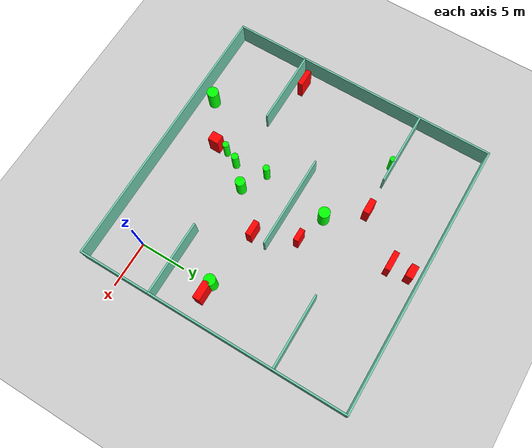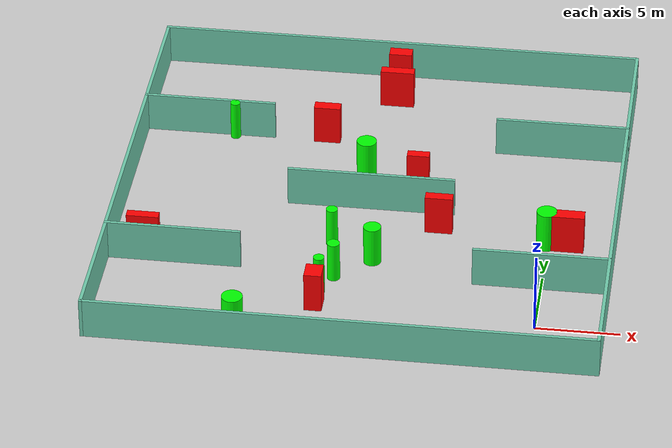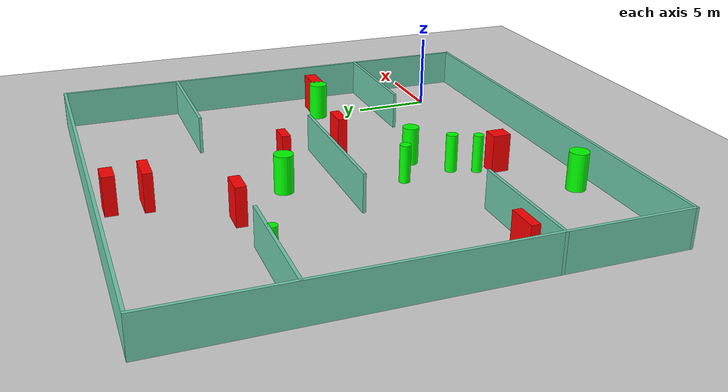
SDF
<sdf version="1.7">
 <world name="default">
  <light name="sun" type="directional">
   <pose>0 0 10 0 -0 0</pose>
   <diffuse>0.8 0.8 0.8 1</diffuse>
   <specular>0.2 0.2 0.2 1</specular>
   <attenuation>
    <range>1000</range>
    <constant>0.9</constant>
    <linear>0.01</linear>
    <quadratic>0.001</quadratic>
   </attenuation>
   <direction>-0.5 0.1 -0.9</direction>
   <spot><inner_angle>0</inner_angle><outer_angle>0</outer_angle><falloff>0</falloff></spot>
  </light>
  <model name="ground_plane">
   <static>1</static>
   <link name="link">
    <collision name="collision">
     <geometry><plane><normal>0 0 1</normal><size>100 100</size></plane></geometry>
     <surface>
      <contact><collide_bitmask>65535</collide_bitmask></contact>
      <friction><ode><mu>100</mu><mu2>50</mu2></ode></friction>
     </surface>
    </collision>
    <visual name="visual">
     <cast_shadows>0</cast_shadows>
     <geometry><plane><normal>0 0 1</normal><size>100 100</size></plane></geometry>
     <material>
      <script><uri>file://media/materials/scripts/gazebo.material</uri><name>Gazebo/Grey</name></script>
     </material>
    </visual>
   </link>
  </model>
  <gravity>0 0 -9.8</gravity>
  <magnetic_field>6e-06 2.3e-05 -4.2e-05</magnetic_field>
  <atmosphere type="adiabatic"/>
  <physics type="ode">
   <max_step_size>0.001</max_step_size>
   <real_time_factor>1</real_time_factor>
   <real_time_update_rate>1000</real_time_update_rate>
  </physics>
  <scene><ambient>0.4 0.4 0.4 1</ambient><background>0.7 0.7 0.7 1</background><shadows>1</shadows></scene>
  <spherical_coordinates>
   <surface_model>EARTH_WGS84</surface_model>
   <latitude_deg>0</latitude_deg>
   <longitude_deg>0</longitude_deg>
   <elevation>0</elevation>
   <heading_deg>0</heading_deg>
  </spherical_coordinates>
  <model name="my_base_walls">
   <link name="Wall_10">
    <collision name="Wall_10_Collision">
     <geometry><box><size>8.2 0.2 2.5</size></box></geometry>
     <pose>0 0 1.25 0 -0 0</pose>
    </collision>
    <visual name="Wall_10_Visual">
     <pose>0 0 1.25 0 -0 0</pose>
     <geometry><box><size>8.2 0.2 2.5</size></box></geometry>
     <material>
      <script><uri>file://media/materials/scripts/gazebo.material</uri><name>Gazebo/Grey</name></script>
      <ambient>0.435294 0.796078 0.67451 1</ambient>
     </material>
     <meta><layer>0</layer></meta>
    </visual>
    <pose>-11 -7 0 0 -0 0</pose>
   </link>
   <link name="Wall_12">
    <collision name="Wall_12_Collision">
     <geometry><box><size>8.2 0.2 2.5</size></box></geometry>
     <pose>0 0 1.25 0 -0 0</pose>
    </collision>
    <visual name="Wall_12_Visual">
     <pose>0 0 1.25 0 -0 0</pose>
     <geometry><box><size>8.2 0.2 2.5</size></box></geometry>
     <material>
      <script><uri>file://media/materials/scripts/gazebo.material</uri><name>Gazebo/Grey</name></script>
      <ambient>0.435294 0.796078 0.67451 1</ambient>
     </material>
     <meta><layer>0</layer></meta>
    </visual>
    <pose>-11 7 0 0 -0 0</pose>
   </link>
   <link name="Wall_14">
    <collision name="Wall_14_Collision">
     <geometry><box><size>8.2 0.2 2.5</size></box></geometry>
     <pose>0 0 1.25 0 -0 0</pose>
    </collision>
    <visual name="Wall_14_Visual">
     <pose>0 0 1.25 0 -0 0</pose>
     <geometry><box><size>8.2 0.2 2.5</size></box></geometry>
     <material>
      <script><uri>file://media/materials/scripts/gazebo.material</uri><name>Gazebo/Grey</name></script>
      <ambient>0.435294 0.796078 0.67451 1</ambient>
     </material>
     <meta><layer>0</layer></meta>
    </visual>
    <pose>11 7 0 0 -0 3.14159</pose>
   </link>
   <link name="Wall_16">
    <collision name="Wall_16_Collision">
     <geometry><box><size>10.2 0.2 2.5</size></box></geometry>
     <pose>0 0 1.25 0 -0 0</pose>
    </collision>
    <visual name="Wall_16_Visual">
     <pose>0 0 1.25 0 -0 0</pose>
     <geometry><box><size>10.2 0.2 2.5</size></box></geometry>
     <material>
      <script><uri>file://media/materials/scripts/gazebo.material</uri><name>Gazebo/Grey</name></script>
      <ambient>0.435294 0.796078 0.67451 1</ambient>
     </material>
     <meta><layer>0</layer></meta>
    </visual>
    <pose>0 0 0 0 -0 3.14159</pose>
   </link>
   <link name="Wall_2">
    <collision name="Wall_2_Collision">
     <geometry><box><size>30.2 0.2 2.5</size></box></geometry>
     <pose>0 0 1.25 0 -0 0</pose>
    </collision>
    <visual name="Wall_2_Visual">
     <pose>0 0 1.25 0 -0 0</pose>
     <geometry><box><size>30.2 0.2 2.5</size></box></geometry>
     <material>
      <script><uri>file://media/materials/scripts/gazebo.material</uri><name>Gazebo/Grey</name></script>
      <ambient>0.435294 0.796078 0.67451 1</ambient>
     </material>
     <meta><layer>0</layer></meta>
    </visual>
    <pose>0 -15 0 0 -0 3.14159</pose>
   </link>
   <link name="Wall_3">
    <collision name="Wall_3_Collision">
     <geometry><box><size>30.2 0.2 2.5</size></box></geometry>
     <pose>0 0 1.25 0 -0 0</pose>
    </collision>
    <visual name="Wall_3_Visual">
     <pose>0 0 1.25 0 -0 0</pose>
     <geometry><box><size>30.2 0.2 2.5</size></box></geometry>
     <material>
      <script><uri>file://media/materials/scripts/gazebo.material</uri><name>Gazebo/Grey</name></script>
      <ambient>0.435294 0.796078 0.67451 1</ambient>
     </material>
     <meta><layer>0</layer></meta>
    </visual>
    <pose>-15 0 0 0 -0 1.5708</pose>
   </link>
   <link name="Wall_4">
    <collision name="Wall_4_Collision">
     <geometry><box><size>30.2 0.2 2.5</size></box></geometry>
     <pose>0 0 1.25 0 -0 0</pose>
    </collision>
    <visual name="Wall_4_Visual">
     <pose>0 0 1.25 0 -0 0</pose>
     <geometry><box><size>30.2 0.2 2.5</size></box></geometry>
     <material>
      <script><uri>file://media/materials/scripts/gazebo.material</uri><name>Gazebo/Grey</name></script>
      <ambient>0.435294 0.796078 0.67451 1</ambient>
     </material>
     <meta><layer>0</layer></meta>
    </visual>
    <pose>0 15 0 0 -0 0</pose>
   </link>
   <link name="Wall_6">
    <collision name="Wall_6_Collision">
     <geometry><box><size>30.2 0.2 2.5</size></box></geometry>
     <pose>0 0 1.25 0 -0 0</pose>
    </collision>
    <visual name="Wall_6_Visual">
     <pose>0 0 1.25 0 -0 0</pose>
     <geometry><box><size>30.2 0.2 2.5</size></box></geometry>
     <material>
      <script><uri>file://media/materials/scripts/gazebo.material</uri><name>Gazebo/Grey</name></script>
      <ambient>0.435294 0.796078 0.67451 1</ambient>
     </material>
     <meta><layer>0</layer></meta>
    </visual>
    <pose>15 0 0 0 -0 1.5708</pose>
   </link>
   <link name="Wall_8">
    <collision name="Wall_8_Collision">
     <geometry><box><size>8.2 0.2 2.5</size></box></geometry>
     <pose>0 0 1.25 0 -0 0</pose>
    </collision>
    <visual name="Wall_8_Visual">
     <pose>0 0 1.25 0 -0 0</pose>
     <geometry><box><size>8.2 0.2 2.5</size></box></geometry>
     <material>
      <script><uri>file://media/materials/scripts/gazebo.material</uri><name>Gazebo/Grey</name></script>
      <ambient>0.435294 0.796078 0.67451 1</ambient>
     </material>
     <meta><layer>0</layer></meta>
    </visual>
    <pose>11 -7 0 0 -0 3.14159</pose>
   </link>
   <static>1</static>
   <pose>-11 11 0 0 -0 0</pose>
  </model>
  <model name="cylinder1">
   <static>1</static>
   <link name="link">
    <inertial>
     <mass>1</mass>
     <inertia><ixx>0.5</ixx><ixy>0</ixy><ixz>0</ixz><iyy>0.5</iyy><iyz>0</iyz><izz>1</izz></inertia>
    </inertial>
    <collision name="collision">
     <geometry><cylinder><radius>0.38292145553963747</radius><length>2.5</length></cylinder></geometry>
    </collision>
    <visual name="visual">
     <geometry><cylinder><radius>0.38292145553963747</radius><length>2.5</length></cylinder></geometry>
     <material>
      <ambient>0 1 0 1</ambient>
      <diffuse>0 1 0 1</diffuse>
      <specular>0.1 0.1 0.1 1</specular>
      <emissive>0 0 0 0</emissive>
     </material>
    </visual>
   </link>
   <pose>-12.286246799514927 3.5481243252632897 1.25 0 0 0</pose>
  </model>
  <model name="cylinder2">
   <static>1</static>
   <link name="link">
    <inertial>
     <mass>1</mass>
     <inertia><ixx>0.5</ixx><ixy>0</ixy><ixz>0</ixz><iyy>0.5</iyy><iyz>0</iyz><izz>1</izz></inertia>
    </inertial>
    <collision name="collision">
     <geometry><cylinder><radius>0.6261561258080159</radius><length>2.5</length></cylinder></geometry>
    </collision>
    <visual name="visual">
     <geometry><cylinder><radius>0.6261561258080159</radius><length>2.5</length></cylinder></geometry>
     <material>
      <ambient>0 1 0 1</ambient>
      <diffuse>0 1 0 1</diffuse>
      <specular>0.1 0.1 0.1 1</specular>
      <emissive>0 0 0 0</emissive>
     </material>
    </visual>
   </link>
   <pose>-17.384082349851464 -2.474583022194953 1.25 0 0 0</pose>
  </model>
  <model name="cylinder3">
   <static>1</static>
   <link name="link">
    <inertial>
     <mass>1</mass>
     <inertia><ixx>0.5</ixx><ixy>0</ixy><ixz>0</ixz><iyy>0.5</iyy><iyz>0</iyz><izz>1</izz></inertia>
    </inertial>
    <collision name="collision">
     <geometry><cylinder><radius>0.3074034707730974</radius><length>2.5</length></cylinder></geometry>
    </collision>
    <visual name="visual">
     <geometry><cylinder><radius>0.3074034707730974</radius><length>2.5</length></cylinder></geometry>
     <material>
      <ambient>0 1 0 1</ambient>
      <diffuse>0 1 0 1</diffuse>
      <specular>0.1 0.1 0.1 1</specular>
      <emissive>0 0 0 0</emissive>
     </material>
    </visual>
   </link>
   <pose>-20.380522686043893 17.754830802002093 1.25 0 0 0</pose>
  </model>
  <model name="cylinder4">
   <static>1</static>
   <link name="link">
    <inertial>
     <mass>1</mass>
     <inertia><ixx>0.5</ixx><ixy>0</ixy><ixz>0</ixz><iyy>0.5</iyy><iyz>0</iyz><izz>1</izz></inertia>
    </inertial>
    <collision name="collision">
     <geometry><cylinder><radius>0.6160568747437674</radius><length>2.5</length></cylinder></geometry>
    </collision>
    <visual name="visual">
     <geometry><cylinder><radius>0.6160568747437674</radius><length>2.5</length></cylinder></geometry>
     <material>
      <ambient>0 1 0 1</ambient>
      <diffuse>0 1 0 1</diffuse>
      <specular>0.1 0.1 0.1 1</specular>
      <emissive>0 0 0 0</emissive>
     </material>
    </visual>
   </link>
   <pose>-0.09640906676541405 8.398674084447505 1.25 0 0 0</pose>
  </model>
  <model name="cylinder5">
   <static>1</static>
   <link name="link">
    <inertial>
     <mass>1</mass>
     <inertia><ixx>0.5</ixx><ixy>0</ixy><ixz>0</ixz><iyy>0.5</iyy><iyz>0</iyz><izz>1</izz></inertia>
    </inertial>
    <collision name="collision">
     <geometry><cylinder><radius>0.35669800834303333</radius><length>2.5</length></cylinder></geometry>
    </collision>
    <visual name="visual">
     <geometry><cylinder><radius>0.35669800834303333</radius><length>2.5</length></cylinder></geometry>
     <material>
      <ambient>0 1 0 1</ambient>
      <diffuse>0 1 0 1</diffuse>
      <specular>0.1 0.1 0.1 1</specular>
      <emissive>0 0 0 0</emissive>
     </material>
    </visual>
   </link>
   <pose>-12.853365374820548 7.0251959292389365 1.25 0 0 0</pose>
  </model>
  <model name="cylinder6">
   <static>1</static>
   <link name="link">
    <inertial>
     <mass>1</mass>
     <inertia><ixx>0.5</ixx><ixy>0</ixy><ixz>0</ixz><iyy>0.5</iyy><iyz>0</iyz><izz>1</izz></inertia>
    </inertial>
    <collision name="collision">
     <geometry><cylinder><radius>0.3326544364534501</radius><length>2.5</length></cylinder></geometry>
    </collision>
    <visual name="visual">
     <geometry><cylinder><radius>0.3326544364534501</radius><length>2.5</length></cylinder></geometry>
     <material>
      <ambient>0 1 0 1</ambient>
      <diffuse>0 1 0 1</diffuse>
      <specular>0.1 0.1 0.1 1</specular>
      <emissive>0 0 0 0</emissive>
     </material>
    </visual>
   </link>
   <pose>-12.942109186088464 2.0150614293603812 1.25 0 0 0</pose>
  </model>
  <model name="cylinder7">
   <static>1</static>
   <link name="link">
    <inertial>
     <mass>1</mass>
     <inertia><ixx>0.5</ixx><ixy>0</ixy><ixz>0</ixz><iyy>0.5</iyy><iyz>0</iyz><izz>1</izz></inertia>
    </inertial>
    <collision name="collision">
     <geometry><cylinder><radius>0.6142670769912326</radius><length>2.5</length></cylinder></geometry>
    </collision>
    <visual name="visual">
     <geometry><cylinder><radius>0.6142670769912326</radius><length>2.5</length></cylinder></geometry>
     <material>
      <ambient>0 1 0 1</ambient>
      <diffuse>0 1 0 1</diffuse>
      <specular>0.1 0.1 0.1 1</specular>
      <emissive>0 0 0 0</emissive>
     </material>
    </visual>
   </link>
   <pose>-11.73052454375752 14.545546782900107 1.25 0 0 0</pose>
  </model>
  <model name="cylinder8">
   <static>1</static>
   <link name="link">
    <inertial>
     <mass>1</mass>
     <inertia><ixx>0.5</ixx><ixy>0</ixy><ixz>0</ixz><iyy>0.5</iyy><iyz>0</iyz><izz>1</izz></inertia>
    </inertial>
    <collision name="collision">
     <geometry><cylinder><radius>0.5308819356291432</radius><length>2.5</length></cylinder></geometry>
    </collision>
    <visual name="visual">
     <geometry><cylinder><radius>0.5308819356291432</radius><length>2.5</length></cylinder></geometry>
     <material>
      <ambient>0 1 0 1</ambient>
      <diffuse>0 1 0 1</diffuse>
      <specular>0.1 0.1 0.1 1</specular>
      <emissive>0 0 0 0</emissive>
     </material>
    </visual>
   </link>
   <pose>-10.227208170874148 5.500164030509177 1.25 0 0 0</pose>
  </model>
  <model name="box1">
   <static>1</static>
   <link name="link">
    <inertial>
     <mass>1</mass>
     <inertia><ixx>0.083</ixx><ixy>0</ixy><ixz>0</ixz><iyy>0.083</iyy><iyz>0</iyz><izz>0.083</izz></inertia>
    </inertial>
    <collision name="collision">
     <geometry><box><size>1.9358309242132101 0.567228144328215 2.5</size></box></geometry>
    </collision>
    <visual name="visual">
     <geometry><box><size>1.9358309242132101 0.567228144328215 2.5</size></box></geometry>
     <material>
      <ambient>1 0 0 1</ambient>
      <diffuse>1 0 0 1</diffuse>
      <specular>0.1 0.1 0.1 1</specular>
      <emissive>0 0 0 0</emissive>
     </material>
    </visual>
    <sensor name="my_contact" type="contact">
     <contact><collision>box_collision</collision><topic>__default_topic__</topic></contact>
    </sensor>
   </link>
   <pose>-23.95369901199113 5.081321625526545 1.25 0 0 0</pose>
  </model>
  <model name="box2">
   <static>1</static>
   <link name="link">
    <inertial>
     <mass>1</mass>
     <inertia><ixx>0.083</ixx><ixy>0</ixy><ixz>0</ixz><iyy>0.083</iyy><iyz>0</iyz><izz>0.083</izz></inertia>
    </inertial>
    <collision name="collision">
     <geometry><box><size>1.6302934985759656 0.6947488617989335 2.5</size></box></geometry>
    </collision>
    <visual name="visual">
     <geometry><box><size>1.6302934985759656 0.6947488617989335 2.5</size></box></geometry>
     <material>
      <ambient>1 0 0 1</ambient>
      <diffuse>1 0 0 1</diffuse>
      <specular>0.1 0.1 0.1 1</specular>
      <emissive>0 0 0 0</emissive>
     </material>
    </visual>
    <sensor name="my_contact" type="contact">
     <contact><collision>box_collision</collision><topic>__default_topic__</topic></contact>
    </sensor>
   </link>
   <pose>-14.639166707347117 18.135461593377826 1.25 0 0 0</pose>
  </model>
  <model name="box3">
   <static>1</static>
   <link name="link">
    <inertial>
     <mass>1</mass>
     <inertia><ixx>0.083</ixx><ixy>0</ixy><ixz>0</ixz><iyy>0.083</iyy><iyz>0</iyz><izz>0.083</izz></inertia>
    </inertial>
    <collision name="collision">
     <geometry><box><size>1.4234608195432394 0.7877918750030504 2.5</size></box></geometry>
    </collision>
    <visual name="visual">
     <geometry><box><size>1.4234608195432394 0.7877918750030504 2.5</size></box></geometry>
     <material>
      <ambient>1 0 0 1</ambient>
      <diffuse>1 0 0 1</diffuse>
      <specular>0.1 0.1 0.1 1</specular>
      <emissive>0 0 0 0</emissive>
     </material>
    </visual>
    <sensor name="my_contact" type="contact">
     <contact><collision>box_collision</collision><topic>__default_topic__</topic></contact>
    </sensor>
   </link>
   <pose>-10.876049319120709 24.914454171816946 1.25 0 0 0</pose>
  </model>
  <model name="box4">
   <static>1</static>
   <link name="link">
    <inertial>
     <mass>1</mass>
     <inertia><ixx>0.083</ixx><ixy>0</ixy><ixz>0</ixz><iyy>0.083</iyy><iyz>0</iyz><izz>0.083</izz></inertia>
    </inertial>
    <collision name="collision">
     <geometry><box><size>1.6673876349186567 0.6131235873505045 2.5</size></box></geometry>
    </collision>
    <visual name="visual">
     <geometry><box><size>1.6673876349186567 0.6131235873505045 2.5</size></box></geometry>
     <material>
      <ambient>1 0 0 1</ambient>
      <diffuse>1 0 0 1</diffuse>
      <specular>0.1 0.1 0.1 1</specular>
      <emissive>0 0 0 0</emissive>
     </material>
    </visual>
    <sensor name="my_contact" type="contact">
     <contact><collision>box_collision</collision><topic>__default_topic__</topic></contact>
    </sensor>
   </link>
   <pose>-6.656226520613835 9.182018665239575 1.25 0 0 0</pose>
  </model>
  <model name="box5">
   <static>1</static>
   <link name="link">
    <inertial>
     <mass>1</mass>
     <inertia><ixx>0.083</ixx><ixy>0</ixy><ixz>0</ixz><iyy>0.083</iyy><iyz>0</iyz><izz>0.083</izz></inertia>
    </inertial>
    <collision name="collision">
     <geometry><box><size>1.0352776736211067 1.1845529429999566 2.5</size></box></geometry>
    </collision>
    <visual name="visual">
     <geometry><box><size>1.0352776736211067 1.1845529429999566 2.5</size></box></geometry>
     <material>
      <ambient>1 0 0 1</ambient>
      <diffuse>1 0 0 1</diffuse>
      <specular>0.1 0.1 0.1 1</specular>
      <emissive>0 0 0 0</emissive>
     </material>
    </visual>
    <sensor name="my_contact" type="contact">
     <contact><collision>box_collision</collision><topic>__default_topic__</topic></contact>
    </sensor>
   </link>
   <pose>-13.05661013733624 0.6773516530378698 1.25 0 0 0</pose>
  </model>
  <model name="box6">
   <static>1</static>
   <link name="link">
    <inertial>
     <mass>1</mass>
     <inertia><ixx>0.083</ixx><ixy>0</ixy><ixz>0</ixz><iyy>0.083</iyy><iyz>0</iyz><izz>0.083</izz></inertia>
    </inertial>
    <collision name="collision">
     <geometry><box><size>2.0911018611113628 0.6205641454679449 2.5</size></box></geometry>
    </collision>
    <visual name="visual">
     <geometry><box><size>2.0911018611113628 0.6205641454679449 2.5</size></box></geometry>
     <material>
      <ambient>1 0 0 1</ambient>
      <diffuse>1 0 0 1</diffuse>
      <specular>0.1 0.1 0.1 1</specular>
      <emissive>0 0 0 0</emissive>
     </material>
    </visual>
    <sensor name="my_contact" type="contact">
     <contact><collision>box_collision</collision><topic>__default_topic__</topic></contact>
    </sensor>
   </link>
   <pose>-10.819011507674883 22.723038330535807 1.25 0 0 0</pose>
  </model>
  <model name="box7">
   <static>1</static>
   <link name="link">
    <inertial>
     <mass>1</mass>
     <inertia><ixx>0.083</ixx><ixy>0</ixy><ixz>0</ixz><iyy>0.083</iyy><iyz>0</iyz><izz>0.083</izz></inertia>
    </inertial>
    <collision name="collision">
     <geometry><box><size>1.3552859633317453 0.5688470680007642 2.5</size></box></geometry>
    </collision>
    <visual name="visual">
     <geometry><box><size>1.3552859633317453 0.5688470680007642 2.5</size></box></geometry>
     <material>
      <ambient>1 0 0 1</ambient>
      <diffuse>1 0 0 1</diffuse>
      <specular>0.1 0.1 0.1 1</specular>
      <emissive>0 0 0 0</emissive>
     </material>
    </visual>
    <sensor name="my_contact" type="contact">
     <contact><collision>box_collision</collision><topic>__default_topic__</topic></contact>
    </sensor>
   </link>
   <pose>-8.42515770803827 13.548857529921857 1.25 0 0 0</pose>
  </model>
  <model name="box8">
   <static>1</static>
   <link name="link">
    <inertial>
     <mass>1</mass>
     <inertia><ixx>0.083</ixx><ixy>0</ixy><ixz>0</ixz><iyy>0.083</iyy><iyz>0</iyz><izz>0.083</izz></inertia>
    </inertial>
    <collision name="collision">
     <geometry><box><size>2.0083076382942884 0.7967241295801206 2.5</size></box></geometry>
    </collision>
    <visual name="visual">
     <geometry><box><size>2.0083076382942884 0.7967241295801206 2.5</size></box></geometry>
     <material>
      <ambient>1 0 0 1</ambient>
      <diffuse>1 0 0 1</diffuse>
      <specular>0.1 0.1 0.1 1</specular>
      <emissive>0 0 0 0</emissive>
     </material>
    </visual>
    <sensor name="my_contact" type="contact">
     <contact><collision>box_collision</collision><topic>__default_topic__</topic></contact>
    </sensor>
   </link>
   <pose>1.1666152975821227 8.279230466042362 1.25 0 0 0</pose>
  </model>
 </world>
</sdf>
